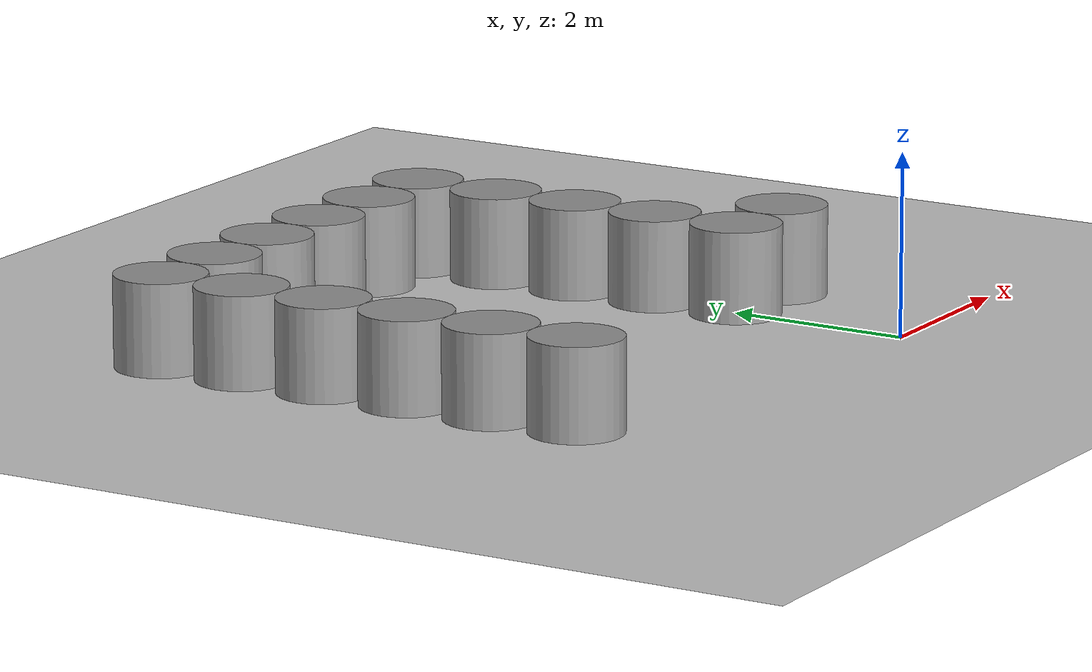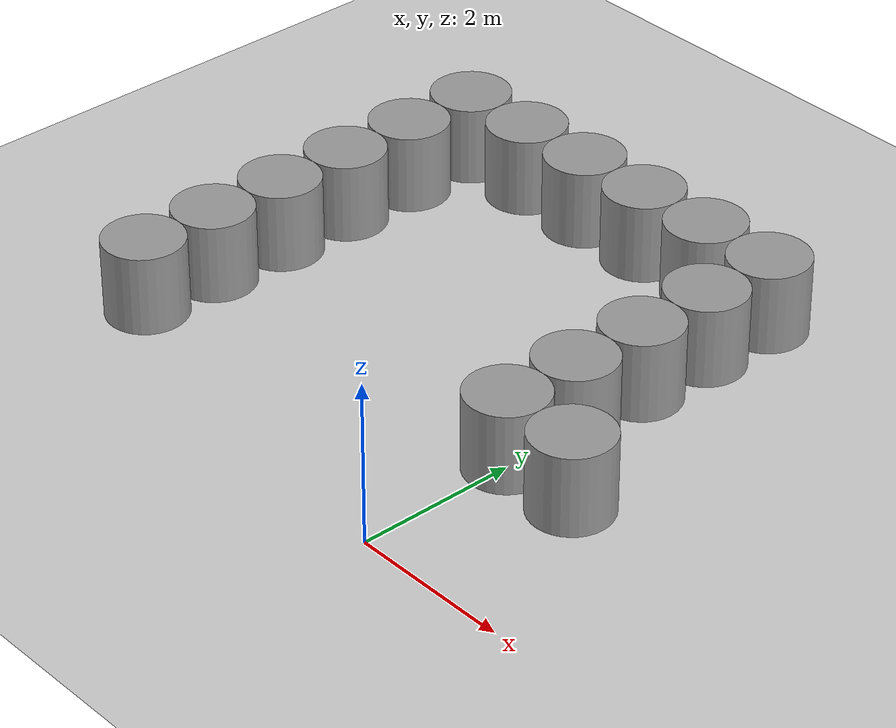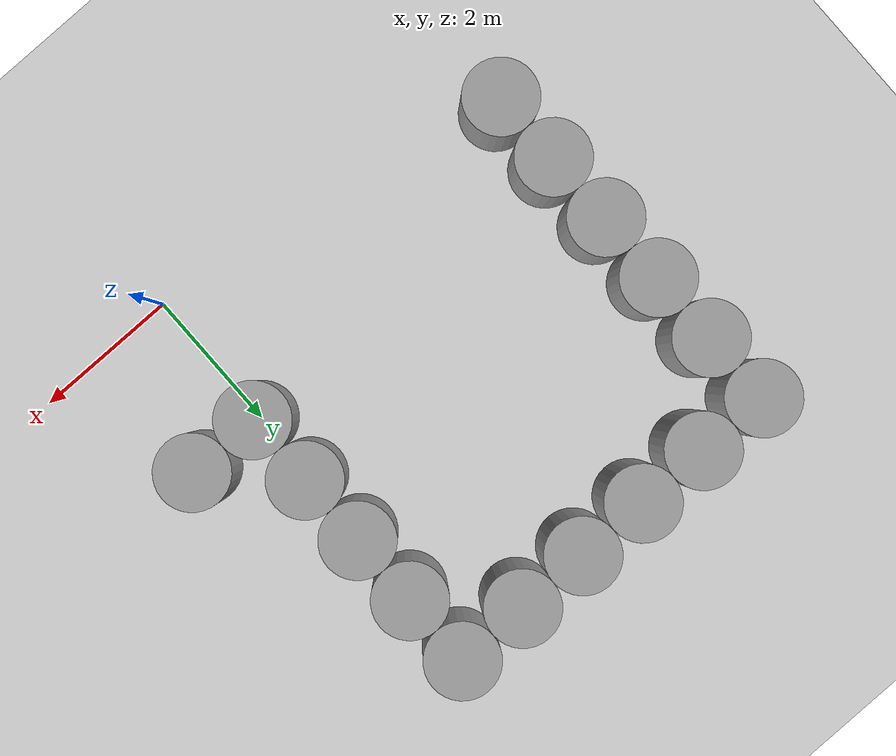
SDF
<sdf version="1.7">
 <world name="default">
  <model name="ground_plane">
   <static>1</static>
   <link name="link">
    <collision name="collision">
     <geometry><plane><normal>0 0 1</normal><size>100 100</size></plane></geometry>
     <surface>
      <contact><collide_bitmask>65535</collide_bitmask></contact>
      <friction><ode><mu>100</mu><mu2>50</mu2></ode></friction>
     </surface>
    </collision>
    <visual name="visual">
     <cast_shadows>0</cast_shadows>
     <geometry><plane><normal>0 0 1</normal><size>100 100</size></plane></geometry>
     <material>
      <script><uri>file://media/materials/scripts/gazebo.material</uri><name>Gazebo/Grey</name></script>
     </material>
    </visual>
   </link>
  </model>
  <model name="cylinder_1m">
   <model name="cylinder_1m">
    <link name="link_0">
     <inertial>
      <mass>1</mass>
      <inertia>
       <ixx>0.166667</ixx>
       <ixy>0</ixy>
       <ixz>0</ixz>
       <iyy>0.166667</iyy>
       <iyz>0</iyz>
       <izz>0.166667</izz>
      </inertia>
     </inertial>
     <pose>0 0 -0 1.5708 -0 0</pose>
     <visual name="visual">
      <geometry>
       <mesh>
        <uri>/home/leesirius/workbench_ws/src/tb3_custom_worlds/custom_models/cylinder_1m.obj</uri>
        <scale>1 1 1</scale>
       </mesh>
      </geometry>
      <material>
       <lighting>1</lighting>
       <script><uri>file://media/materials/scripts/gazebo.material</uri><name>Gazebo/Grey</name></script>
       <shader type="pixel"/>
      </material>
     </visual>
     <collision name="collision">
      <geometry>
       <mesh>
        <uri>/home/leesirius/workbench_ws/src/tb3_custom_worlds/custom_models/cylinder_1m.obj</uri>
        <scale>1 1 1</scale>
       </mesh>
      </geometry>
      <surface>
       <friction>
        <ode><mu>1</mu><mu2>1</mu2><fdir1>0 0 0</fdir1><slip1>0</slip1><slip2>0</slip2></ode>
        <torsional>
         <coefficient>1</coefficient>
         <patch_radius>0</patch_radius>
         <surface_radius>0</surface_radius>
         <use_patch_radius>1</use_patch_radius>
         <ode><slip>0</slip></ode>
        </torsional>
       </friction>
       <bounce><restitution_coefficient>0</restitution_coefficient><threshold>1e+06</threshold></bounce>
       <contact>
        <collide_without_contact>0</collide_without_contact>
        <collide_without_contact_bitmask>1</collide_without_contact_bitmask>
        <collide_bitmask>1</collide_bitmask>
        <ode>
         <soft_cfm>0</soft_cfm>
         <soft_erp>0.2</soft_erp>
         <kp>1e+13</kp>
         <kd>1</kd>
         <max_vel>0.01</max_vel>
         <min_depth>0</min_depth>
        </ode>
        <bullet>
         <split_impulse>1</split_impulse>
         <split_impulse_penetration_threshold>-0.01</split_impulse_penetration_threshold>
         <soft_cfm>0</soft_cfm>
         <soft_erp>0.2</soft_erp>
         <kp>1e+13</kp>
         <kd>1</kd>
        </bullet>
       </contact>
      </surface>
     </collision>
    </link>
    <static>0</static>
    <pose>0 0 4e-06 0 -0 0</pose>
   </model>
   <static>1</static>
   <pose>1.1e-05 2.99999 0.499996 -4e-06 0 3.1e-05</pose>
  </model>
  <model name="cylinder_1m_0">
   <model name="cylinder_1m">
    <link name="link_0">
     <inertial>
      <mass>1</mass>
      <inertia>
       <ixx>0.166667</ixx>
       <ixy>0</ixy>
       <ixz>0</ixz>
       <iyy>0.166667</iyy>
       <iyz>0</iyz>
       <izz>0.166667</izz>
      </inertia>
     </inertial>
     <pose>0 0 -0 1.5708 -0 0</pose>
     <visual name="visual">
      <geometry>
       <mesh>
        <uri>/home/leesirius/workbench_ws/src/tb3_custom_worlds/custom_models/cylinder_1m.obj</uri>
        <scale>1 1 1</scale>
       </mesh>
      </geometry>
      <material>
       <lighting>1</lighting>
       <script><uri>file://media/materials/scripts/gazebo.material</uri><name>Gazebo/Grey</name></script>
       <shader type="pixel"/>
      </material>
     </visual>
     <collision name="collision">
      <geometry>
       <mesh>
        <uri>/home/leesirius/workbench_ws/src/tb3_custom_worlds/custom_models/cylinder_1m.obj</uri>
        <scale>1 1 1</scale>
       </mesh>
      </geometry>
      <surface>
       <friction>
        <ode><mu>1</mu><mu2>1</mu2><fdir1>0 0 0</fdir1><slip1>0</slip1><slip2>0</slip2></ode>
        <torsional>
         <coefficient>1</coefficient>
         <patch_radius>0</patch_radius>
         <surface_radius>0</surface_radius>
         <use_patch_radius>1</use_patch_radius>
         <ode><slip>0</slip></ode>
        </torsional>
       </friction>
       <bounce><restitution_coefficient>0</restitution_coefficient><threshold>1e+06</threshold></bounce>
       <contact>
        <collide_without_contact>0</collide_without_contact>
        <collide_without_contact_bitmask>1</collide_without_contact_bitmask>
        <collide_bitmask>1</collide_bitmask>
        <ode>
         <soft_cfm>0</soft_cfm>
         <soft_erp>0.2</soft_erp>
         <kp>1e+13</kp>
         <kd>1</kd>
         <max_vel>0.01</max_vel>
         <min_depth>0</min_depth>
        </ode>
        <bullet>
         <split_impulse>1</split_impulse>
         <split_impulse_penetration_threshold>-0.01</split_impulse_penetration_threshold>
         <soft_cfm>0</soft_cfm>
         <soft_erp>0.2</soft_erp>
         <kp>1e+13</kp>
         <kd>1</kd>
        </bullet>
       </contact>
      </surface>
     </collision>
    </link>
    <static>0</static>
    <pose>0 0 4e-06 0 -0 0</pose>
   </model>
   <static>1</static>
   <pose>1.1e-05 1.99999 0.499996 -4e-06 0 3.1e-05</pose>
  </model>
  <model name="cylinder_1m_1_clone_1">
   <model name="cylinder_1m">
    <link name="link_0">
     <inertial>
      <mass>1</mass>
      <inertia>
       <ixx>0.166667</ixx>
       <ixy>0</ixy>
       <ixz>0</ixz>
       <iyy>0.166667</iyy>
       <iyz>0</iyz>
       <izz>0.166667</izz>
      </inertia>
     </inertial>
     <pose>0 0 -0 1.5708 -0 0</pose>
     <visual name="visual">
      <geometry>
       <mesh>
        <uri>/home/leesirius/workbench_ws/src/tb3_custom_worlds/custom_models/cylinder_1m.obj</uri>
        <scale>1 1 1</scale>
       </mesh>
      </geometry>
      <material>
       <lighting>1</lighting>
       <script><uri>file://media/materials/scripts/gazebo.material</uri><name>Gazebo/Grey</name></script>
       <shader type="pixel"/>
      </material>
     </visual>
     <collision name="collision">
      <geometry>
       <mesh>
        <uri>/home/leesirius/workbench_ws/src/tb3_custom_worlds/custom_models/cylinder_1m.obj</uri>
        <scale>1 1 1</scale>
       </mesh>
      </geometry>
      <surface>
       <friction>
        <ode><mu>1</mu><mu2>1</mu2><fdir1>0 0 0</fdir1><slip1>0</slip1><slip2>0</slip2></ode>
        <torsional>
         <coefficient>1</coefficient>
         <patch_radius>0</patch_radius>
         <surface_radius>0</surface_radius>
         <use_patch_radius>1</use_patch_radius>
         <ode><slip>0</slip></ode>
        </torsional>
       </friction>
       <bounce><restitution_coefficient>0</restitution_coefficient><threshold>1e+06</threshold></bounce>
       <contact>
        <collide_without_contact>0</collide_without_contact>
        <collide_without_contact_bitmask>1</collide_without_contact_bitmask>
        <collide_bitmask>1</collide_bitmask>
        <ode>
         <soft_cfm>0</soft_cfm>
         <soft_erp>0.2</soft_erp>
         <kp>1e+13</kp>
         <kd>1</kd>
         <max_vel>0.01</max_vel>
         <min_depth>0</min_depth>
        </ode>
        <bullet>
         <split_impulse>1</split_impulse>
         <split_impulse_penetration_threshold>-0.01</split_impulse_penetration_threshold>
         <soft_cfm>0</soft_cfm>
         <soft_erp>0.2</soft_erp>
         <kp>1e+13</kp>
         <kd>1</kd>
        </bullet>
       </contact>
      </surface>
     </collision>
    </link>
    <static>0</static>
    <pose>0 0 4e-06 0 -0 0</pose>
   </model>
   <static>1</static>
   <pose>1.1e-05 3.99999 0.499996 -4e-06 0 3.1e-05</pose>
  </model>
  <model name="cylinder_1m_1_clone_3">
   <model name="cylinder_1m">
    <link name="link_0">
     <inertial>
      <mass>1</mass>
      <inertia>
       <ixx>0.166667</ixx>
       <ixy>0</ixy>
       <ixz>0</ixz>
       <iyy>0.166667</iyy>
       <iyz>0</iyz>
       <izz>0.166667</izz>
      </inertia>
     </inertial>
     <pose>0 0 -0 1.5708 -0 0</pose>
     <visual name="visual">
      <geometry>
       <mesh>
        <uri>/home/leesirius/workbench_ws/src/tb3_custom_worlds/custom_models/cylinder_1m.obj</uri>
        <scale>1 1 1</scale>
       </mesh>
      </geometry>
      <material>
       <lighting>1</lighting>
       <script><uri>file://media/materials/scripts/gazebo.material</uri><name>Gazebo/Grey</name></script>
       <shader type="pixel"/>
      </material>
     </visual>
     <collision name="collision">
      <geometry>
       <mesh>
        <uri>/home/leesirius/workbench_ws/src/tb3_custom_worlds/custom_models/cylinder_1m.obj</uri>
        <scale>1 1 1</scale>
       </mesh>
      </geometry>
      <surface>
       <friction>
        <ode><mu>1</mu><mu2>1</mu2><fdir1>0 0 0</fdir1><slip1>0</slip1><slip2>0</slip2></ode>
        <torsional>
         <coefficient>1</coefficient>
         <patch_radius>0</patch_radius>
         <surface_radius>0</surface_radius>
         <use_patch_radius>1</use_patch_radius>
         <ode><slip>0</slip></ode>
        </torsional>
       </friction>
       <bounce><restitution_coefficient>0</restitution_coefficient><threshold>1e+06</threshold></bounce>
       <contact>
        <collide_without_contact>0</collide_without_contact>
        <collide_without_contact_bitmask>1</collide_without_contact_bitmask>
        <collide_bitmask>1</collide_bitmask>
        <ode>
         <soft_cfm>0</soft_cfm>
         <soft_erp>0.2</soft_erp>
         <kp>1e+13</kp>
         <kd>1</kd>
         <max_vel>0.01</max_vel>
         <min_depth>0</min_depth>
        </ode>
        <bullet>
         <split_impulse>1</split_impulse>
         <split_impulse_penetration_threshold>-0.01</split_impulse_penetration_threshold>
         <soft_cfm>0</soft_cfm>
         <soft_erp>0.2</soft_erp>
         <kp>1e+13</kp>
         <kd>1</kd>
        </bullet>
       </contact>
      </surface>
     </collision>
    </link>
    <static>0</static>
    <pose>0 0 4e-06 0 -0 0</pose>
   </model>
   <static>1</static>
   <pose>1.1e-05 4.99999 0.499996 -4e-06 0 3.1e-05</pose>
  </model>
  <model name="cylinder_1m_1_clone_4">
   <model name="cylinder_1m">
    <link name="link_0">
     <inertial>
      <mass>1</mass>
      <inertia>
       <ixx>0.166667</ixx>
       <ixy>0</ixy>
       <ixz>0</ixz>
       <iyy>0.166667</iyy>
       <iyz>0</iyz>
       <izz>0.166667</izz>
      </inertia>
     </inertial>
     <pose>0 0 -0 1.5708 -0 0</pose>
     <visual name="visual">
      <geometry>
       <mesh>
        <uri>/home/leesirius/workbench_ws/src/tb3_custom_worlds/custom_models/cylinder_1m.obj</uri>
        <scale>1 1 1</scale>
       </mesh>
      </geometry>
      <material>
       <lighting>1</lighting>
       <script><uri>file://media/materials/scripts/gazebo.material</uri><name>Gazebo/Grey</name></script>
       <shader type="pixel"/>
      </material>
     </visual>
     <collision name="collision">
      <geometry>
       <mesh>
        <uri>/home/leesirius/workbench_ws/src/tb3_custom_worlds/custom_models/cylinder_1m.obj</uri>
        <scale>1 1 1</scale>
       </mesh>
      </geometry>
      <surface>
       <friction>
        <ode><mu>1</mu><mu2>1</mu2><fdir1>0 0 0</fdir1><slip1>0</slip1><slip2>0</slip2></ode>
        <torsional>
         <coefficient>1</coefficient>
         <patch_radius>0</patch_radius>
         <surface_radius>0</surface_radius>
         <use_patch_radius>1</use_patch_radius>
         <ode><slip>0</slip></ode>
        </torsional>
       </friction>
       <bounce><restitution_coefficient>0</restitution_coefficient><threshold>1e+06</threshold></bounce>
       <contact>
        <collide_without_contact>0</collide_without_contact>
        <collide_without_contact_bitmask>1</collide_without_contact_bitmask>
        <collide_bitmask>1</collide_bitmask>
        <ode>
         <soft_cfm>0</soft_cfm>
         <soft_erp>0.2</soft_erp>
         <kp>1e+13</kp>
         <kd>1</kd>
         <max_vel>0.01</max_vel>
         <min_depth>0</min_depth>
        </ode>
        <bullet>
         <split_impulse>1</split_impulse>
         <split_impulse_penetration_threshold>-0.01</split_impulse_penetration_threshold>
         <soft_cfm>0</soft_cfm>
         <soft_erp>0.2</soft_erp>
         <kp>1e+13</kp>
         <kd>1</kd>
        </bullet>
       </contact>
      </surface>
     </collision>
    </link>
    <static>0</static>
    <pose>0 0 4e-06 0 -0 0</pose>
   </model>
   <static>1</static>
   <pose>1.1e-05 5.99999 0.499996 -4e-06 0 3.1e-05</pose>
  </model>
  <model name="cylinder_1m_1_clone_17">
   <model name="cylinder_1m">
    <link name="link_0">
     <inertial>
      <mass>1</mass>
      <inertia>
       <ixx>0.166667</ixx>
       <ixy>0</ixy>
       <ixz>0</ixz>
       <iyy>0.166667</iyy>
       <iyz>0</iyz>
       <izz>0.166667</izz>
      </inertia>
     </inertial>
     <pose>0 0 -0 1.5708 -0 0</pose>
     <visual name="visual">
      <geometry>
       <mesh>
        <uri>/home/leesirius/workbench_ws/src/tb3_custom_worlds/custom_models/cylinder_1m.obj</uri>
        <scale>1 1 1</scale>
       </mesh>
      </geometry>
      <material>
       <lighting>1</lighting>
       <script><uri>file://media/materials/scripts/gazebo.material</uri><name>Gazebo/Grey</name></script>
       <shader type="pixel"/>
      </material>
     </visual>
     <collision name="collision">
      <geometry>
       <mesh>
        <uri>/home/leesirius/workbench_ws/src/tb3_custom_worlds/custom_models/cylinder_1m.obj</uri>
        <scale>1 1 1</scale>
       </mesh>
      </geometry>
      <surface>
       <friction>
        <ode><mu>1</mu><mu2>1</mu2><fdir1>0 0 0</fdir1><slip1>0</slip1><slip2>0</slip2></ode>
        <torsional>
         <coefficient>1</coefficient>
         <patch_radius>0</patch_radius>
         <surface_radius>0</surface_radius>
         <use_patch_radius>1</use_patch_radius>
         <ode><slip>0</slip></ode>
        </torsional>
       </friction>
       <bounce><restitution_coefficient>0</restitution_coefficient><threshold>1e+06</threshold></bounce>
       <contact>
        <collide_without_contact>0</collide_without_contact>
        <collide_without_contact_bitmask>1</collide_without_contact_bitmask>
        <collide_bitmask>1</collide_bitmask>
        <ode>
         <soft_cfm>0</soft_cfm>
         <soft_erp>0.2</soft_erp>
         <kp>1e+13</kp>
         <kd>1</kd>
         <max_vel>0.01</max_vel>
         <min_depth>0</min_depth>
        </ode>
        <bullet>
         <split_impulse>1</split_impulse>
         <split_impulse_penetration_threshold>-0.01</split_impulse_penetration_threshold>
         <soft_cfm>0</soft_cfm>
         <soft_erp>0.2</soft_erp>
         <kp>1e+13</kp>
         <kd>1</kd>
        </bullet>
       </contact>
      </surface>
     </collision>
    </link>
    <static>0</static>
    <pose>0 0 4e-06 0 -0 0</pose>
   </model>
   <static>1</static>
   <pose>-4.99999 0.999994 0.499996 -4e-06 0 3.1e-05</pose>
  </model>
  <model name="cylinder_1m_1_clone_18">
   <model name="cylinder_1m">
    <link name="link_0">
     <inertial>
      <mass>1</mass>
      <inertia>
       <ixx>0.166667</ixx>
       <ixy>0</ixy>
       <ixz>0</ixz>
       <iyy>0.166667</iyy>
       <iyz>0</iyz>
       <izz>0.166667</izz>
      </inertia>
     </inertial>
     <pose>0 0 -0 1.5708 -0 0</pose>
     <visual name="visual">
      <geometry>
       <mesh>
        <uri>/home/leesirius/workbench_ws/src/tb3_custom_worlds/custom_models/cylinder_1m.obj</uri>
        <scale>1 1 1</scale>
       </mesh>
      </geometry>
      <material>
       <lighting>1</lighting>
       <script><uri>file://media/materials/scripts/gazebo.material</uri><name>Gazebo/Grey</name></script>
       <shader type="pixel"/>
      </material>
     </visual>
     <collision name="collision">
      <geometry>
       <mesh>
        <uri>/home/leesirius/workbench_ws/src/tb3_custom_worlds/custom_models/cylinder_1m.obj</uri>
        <scale>1 1 1</scale>
       </mesh>
      </geometry>
      <surface>
       <friction>
        <ode><mu>1</mu><mu2>1</mu2><fdir1>0 0 0</fdir1><slip1>0</slip1><slip2>0</slip2></ode>
        <torsional>
         <coefficient>1</coefficient>
         <patch_radius>0</patch_radius>
         <surface_radius>0</surface_radius>
         <use_patch_radius>1</use_patch_radius>
         <ode><slip>0</slip></ode>
        </torsional>
       </friction>
       <bounce><restitution_coefficient>0</restitution_coefficient><threshold>1e+06</threshold></bounce>
       <contact>
        <collide_without_contact>0</collide_without_contact>
        <collide_without_contact_bitmask>1</collide_without_contact_bitmask>
        <collide_bitmask>1</collide_bitmask>
        <ode>
         <soft_cfm>0</soft_cfm>
         <soft_erp>0.2</soft_erp>
         <kp>1e+13</kp>
         <kd>1</kd>
         <max_vel>0.01</max_vel>
         <min_depth>0</min_depth>
        </ode>
        <bullet>
         <split_impulse>1</split_impulse>
         <split_impulse_penetration_threshold>-0.01</split_impulse_penetration_threshold>
         <soft_cfm>0</soft_cfm>
         <soft_erp>0.2</soft_erp>
         <kp>1e+13</kp>
         <kd>1</kd>
        </bullet>
       </contact>
      </surface>
     </collision>
    </link>
    <static>0</static>
    <pose>0 0 4e-06 0 -0 0</pose>
   </model>
   <static>1</static>
   <pose>-4.99999 1.99999 0.499996 -4e-06 0 3.1e-05</pose>
  </model>
  <model name="cylinder_1m_1_clone_19">
   <model name="cylinder_1m">
    <link name="link_0">
     <inertial>
      <mass>1</mass>
      <inertia>
       <ixx>0.166667</ixx>
       <ixy>0</ixy>
       <ixz>0</ixz>
       <iyy>0.166667</iyy>
       <iyz>0</iyz>
       <izz>0.166667</izz>
      </inertia>
     </inertial>
     <pose>0 0 -0 1.5708 -0 0</pose>
     <visual name="visual">
      <geometry>
       <mesh>
        <uri>/home/leesirius/workbench_ws/src/tb3_custom_worlds/custom_models/cylinder_1m.obj</uri>
        <scale>1 1 1</scale>
       </mesh>
      </geometry>
      <material>
       <lighting>1</lighting>
       <script><uri>file://media/materials/scripts/gazebo.material</uri><name>Gazebo/Grey</name></script>
       <shader type="pixel"/>
      </material>
     </visual>
     <collision name="collision">
      <geometry>
       <mesh>
        <uri>/home/leesirius/workbench_ws/src/tb3_custom_worlds/custom_models/cylinder_1m.obj</uri>
        <scale>1 1 1</scale>
       </mesh>
      </geometry>
      <surface>
       <friction>
        <ode><mu>1</mu><mu2>1</mu2><fdir1>0 0 0</fdir1><slip1>0</slip1><slip2>0</slip2></ode>
        <torsional>
         <coefficient>1</coefficient>
         <patch_radius>0</patch_radius>
         <surface_radius>0</surface_radius>
         <use_patch_radius>1</use_patch_radius>
         <ode><slip>0</slip></ode>
        </torsional>
       </friction>
       <bounce><restitution_coefficient>0</restitution_coefficient><threshold>1e+06</threshold></bounce>
       <contact>
        <collide_without_contact>0</collide_without_contact>
        <collide_without_contact_bitmask>1</collide_without_contact_bitmask>
        <collide_bitmask>1</collide_bitmask>
        <ode>
         <soft_cfm>0</soft_cfm>
         <soft_erp>0.2</soft_erp>
         <kp>1e+13</kp>
         <kd>1</kd>
         <max_vel>0.01</max_vel>
         <min_depth>0</min_depth>
        </ode>
        <bullet>
         <split_impulse>1</split_impulse>
         <split_impulse_penetration_threshold>-0.01</split_impulse_penetration_threshold>
         <soft_cfm>0</soft_cfm>
         <soft_erp>0.2</soft_erp>
         <kp>1e+13</kp>
         <kd>1</kd>
        </bullet>
       </contact>
      </surface>
     </collision>
    </link>
    <static>0</static>
    <pose>0 0 4e-06 0 -0 0</pose>
   </model>
   <static>1</static>
   <pose>-4.99999 2.99999 0.499996 -4e-06 0 3.1e-05</pose>
  </model>
  <model name="cylinder_1m_1_clone_20">
   <model name="cylinder_1m">
    <link name="link_0">
     <inertial>
      <mass>1</mass>
      <inertia>
       <ixx>0.166667</ixx>
       <ixy>0</ixy>
       <ixz>0</ixz>
       <iyy>0.166667</iyy>
       <iyz>0</iyz>
       <izz>0.166667</izz>
      </inertia>
     </inertial>
     <pose>0 0 -0 1.5708 -0 0</pose>
     <visual name="visual">
      <geometry>
       <mesh>
        <uri>/home/leesirius/workbench_ws/src/tb3_custom_worlds/custom_models/cylinder_1m.obj</uri>
        <scale>1 1 1</scale>
       </mesh>
      </geometry>
      <material>
       <lighting>1</lighting>
       <script><uri>file://media/materials/scripts/gazebo.material</uri><name>Gazebo/Grey</name></script>
       <shader type="pixel"/>
      </material>
     </visual>
     <collision name="collision">
      <geometry>
       <mesh>
        <uri>/home/leesirius/workbench_ws/src/tb3_custom_worlds/custom_models/cylinder_1m.obj</uri>
        <scale>1 1 1</scale>
       </mesh>
      </geometry>
      <surface>
       <friction>
        <ode><mu>1</mu><mu2>1</mu2><fdir1>0 0 0</fdir1><slip1>0</slip1><slip2>0</slip2></ode>
        <torsional>
         <coefficient>1</coefficient>
         <patch_radius>0</patch_radius>
         <surface_radius>0</surface_radius>
         <use_patch_radius>1</use_patch_radius>
         <ode><slip>0</slip></ode>
        </torsional>
       </friction>
       <bounce><restitution_coefficient>0</restitution_coefficient><threshold>1e+06</threshold></bounce>
       <contact>
        <collide_without_contact>0</collide_without_contact>
        <collide_without_contact_bitmask>1</collide_without_contact_bitmask>
        <collide_bitmask>1</collide_bitmask>
        <ode>
         <soft_cfm>0</soft_cfm>
         <soft_erp>0.2</soft_erp>
         <kp>1e+13</kp>
         <kd>1</kd>
         <max_vel>0.01</max_vel>
         <min_depth>0</min_depth>
        </ode>
        <bullet>
         <split_impulse>1</split_impulse>
         <split_impulse_penetration_threshold>-0.01</split_impulse_penetration_threshold>
         <soft_cfm>0</soft_cfm>
         <soft_erp>0.2</soft_erp>
         <kp>1e+13</kp>
         <kd>1</kd>
        </bullet>
       </contact>
      </surface>
     </collision>
    </link>
    <static>0</static>
    <pose>0 0 4e-06 0 -0 0</pose>
   </model>
   <static>1</static>
   <pose>-4.99999 3.99999 0.499996 -4e-06 0 3.1e-05</pose>
  </model>
  <model name="cylinder_1m_1_clone_21">
   <model name="cylinder_1m">
    <link name="link_0">
     <inertial>
      <mass>1</mass>
      <inertia>
       <ixx>0.166667</ixx>
       <ixy>0</ixy>
       <ixz>0</ixz>
       <iyy>0.166667</iyy>
       <iyz>0</iyz>
       <izz>0.166667</izz>
      </inertia>
     </inertial>
     <pose>0 0 -0 1.5708 -0 0</pose>
     <visual name="visual">
      <geometry>
       <mesh>
        <uri>/home/leesirius/workbench_ws/src/tb3_custom_worlds/custom_models/cylinder_1m.obj</uri>
        <scale>1 1 1</scale>
       </mesh>
      </geometry>
      <material>
       <lighting>1</lighting>
       <script><uri>file://media/materials/scripts/gazebo.material</uri><name>Gazebo/Grey</name></script>
       <shader type="pixel"/>
      </material>
     </visual>
     <collision name="collision">
      <geometry>
       <mesh>
        <uri>/home/leesirius/workbench_ws/src/tb3_custom_worlds/custom_models/cylinder_1m.obj</uri>
        <scale>1 1 1</scale>
       </mesh>
      </geometry>
      <surface>
       <friction>
        <ode><mu>1</mu><mu2>1</mu2><fdir1>0 0 0</fdir1><slip1>0</slip1><slip2>0</slip2></ode>
        <torsional>
         <coefficient>1</coefficient>
         <patch_radius>0</patch_radius>
         <surface_radius>0</surface_radius>
         <use_patch_radius>1</use_patch_radius>
         <ode><slip>0</slip></ode>
        </torsional>
       </friction>
       <bounce><restitution_coefficient>0</restitution_coefficient><threshold>1e+06</threshold></bounce>
       <contact>
        <collide_without_contact>0</collide_without_contact>
        <collide_without_contact_bitmask>1</collide_without_contact_bitmask>
        <collide_bitmask>1</collide_bitmask>
        <ode>
         <soft_cfm>0</soft_cfm>
         <soft_erp>0.2</soft_erp>
         <kp>1e+13</kp>
         <kd>1</kd>
         <max_vel>0.01</max_vel>
         <min_depth>0</min_depth>
        </ode>
        <bullet>
         <split_impulse>1</split_impulse>
         <split_impulse_penetration_threshold>-0.01</split_impulse_penetration_threshold>
         <soft_cfm>0</soft_cfm>
         <soft_erp>0.2</soft_erp>
         <kp>1e+13</kp>
         <kd>1</kd>
        </bullet>
       </contact>
      </surface>
     </collision>
    </link>
    <static>0</static>
    <pose>0 0 4e-06 0 -0 0</pose>
   </model>
   <static>1</static>
   <pose>-4.99999 4.99999 0.499996 -4e-06 0 3.1e-05</pose>
  </model>
  <model name="cylinder_1m_1_clone_22">
   <model name="cylinder_1m">
    <link name="link_0">
     <inertial>
      <mass>1</mass>
      <inertia>
       <ixx>0.166667</ixx>
       <ixy>0</ixy>
       <ixz>0</ixz>
       <iyy>0.166667</iyy>
       <iyz>0</iyz>
       <izz>0.166667</izz>
      </inertia>
     </inertial>
     <pose>0 0 -0 1.5708 -0 0</pose>
     <visual name="visual">
      <geometry>
       <mesh>
        <uri>/home/leesirius/workbench_ws/src/tb3_custom_worlds/custom_models/cylinder_1m.obj</uri>
        <scale>1 1 1</scale>
       </mesh>
      </geometry>
      <material>
       <lighting>1</lighting>
       <script><uri>file://media/materials/scripts/gazebo.material</uri><name>Gazebo/Grey</name></script>
       <shader type="pixel"/>
      </material>
     </visual>
     <collision name="collision">
      <geometry>
       <mesh>
        <uri>/home/leesirius/workbench_ws/src/tb3_custom_worlds/custom_models/cylinder_1m.obj</uri>
        <scale>1 1 1</scale>
       </mesh>
      </geometry>
      <surface>
       <friction>
        <ode><mu>1</mu><mu2>1</mu2><fdir1>0 0 0</fdir1><slip1>0</slip1><slip2>0</slip2></ode>
        <torsional>
         <coefficient>1</coefficient>
         <patch_radius>0</patch_radius>
         <surface_radius>0</surface_radius>
         <use_patch_radius>1</use_patch_radius>
         <ode><slip>0</slip></ode>
        </torsional>
       </friction>
       <bounce><restitution_coefficient>0</restitution_coefficient><threshold>1e+06</threshold></bounce>
       <contact>
        <collide_without_contact>0</collide_without_contact>
        <collide_without_contact_bitmask>1</collide_without_contact_bitmask>
        <collide_bitmask>1</collide_bitmask>
        <ode>
         <soft_cfm>0</soft_cfm>
         <soft_erp>0.2</soft_erp>
         <kp>1e+13</kp>
         <kd>1</kd>
         <max_vel>0.01</max_vel>
         <min_depth>0</min_depth>
        </ode>
        <bullet>
         <split_impulse>1</split_impulse>
         <split_impulse_penetration_threshold>-0.01</split_impulse_penetration_threshold>
         <soft_cfm>0</soft_cfm>
         <soft_erp>0.2</soft_erp>
         <kp>1e+13</kp>
         <kd>1</kd>
        </bullet>
       </contact>
      </surface>
     </collision>
    </link>
    <static>0</static>
    <pose>0 0 4e-06 0 -0 0</pose>
   </model>
   <static>1</static>
   <pose>-4.99999 5.99999 0.499996 -4e-06 0 3.1e-05</pose>
  </model>
  <model name="cylinder_1m_1_clone_23">
   <model name="cylinder_1m">
    <link name="link_0">
     <inertial>
      <mass>1</mass>
      <inertia>
       <ixx>0.166667</ixx>
       <ixy>0</ixy>
       <ixz>0</ixz>
       <iyy>0.166667</iyy>
       <iyz>0</iyz>
       <izz>0.166667</izz>
      </inertia>
     </inertial>
     <pose>0 0 -0 1.5708 -0 0</pose>
     <visual name="visual">
      <geometry>
       <mesh>
        <uri>/home/leesirius/workbench_ws/src/tb3_custom_worlds/custom_models/cylinder_1m.obj</uri>
        <scale>1 1 1</scale>
       </mesh>
      </geometry>
      <material>
       <lighting>1</lighting>
       <script><uri>file://media/materials/scripts/gazebo.material</uri><name>Gazebo/Grey</name></script>
       <shader type="pixel"/>
      </material>
     </visual>
     <collision name="collision">
      <geometry>
       <mesh>
        <uri>/home/leesirius/workbench_ws/src/tb3_custom_worlds/custom_models/cylinder_1m.obj</uri>
        <scale>1 1 1</scale>
       </mesh>
      </geometry>
      <surface>
       <friction>
        <ode><mu>1</mu><mu2>1</mu2><fdir1>0 0 0</fdir1><slip1>0</slip1><slip2>0</slip2></ode>
        <torsional>
         <coefficient>1</coefficient>
         <patch_radius>0</patch_radius>
         <surface_radius>0</surface_radius>
         <use_patch_radius>1</use_patch_radius>
         <ode><slip>0</slip></ode>
        </torsional>
       </friction>
       <bounce><restitution_coefficient>0</restitution_coefficient><threshold>1e+06</threshold></bounce>
       <contact>
        <collide_without_contact>0</collide_without_contact>
        <collide_without_contact_bitmask>1</collide_without_contact_bitmask>
        <collide_bitmask>1</collide_bitmask>
        <ode>
         <soft_cfm>0</soft_cfm>
         <soft_erp>0.2</soft_erp>
         <kp>1e+13</kp>
         <kd>1</kd>
         <max_vel>0.01</max_vel>
         <min_depth>0</min_depth>
        </ode>
        <bullet>
         <split_impulse>1</split_impulse>
         <split_impulse_penetration_threshold>-0.01</split_impulse_penetration_threshold>
         <soft_cfm>0</soft_cfm>
         <soft_erp>0.2</soft_erp>
         <kp>1e+13</kp>
         <kd>1</kd>
        </bullet>
       </contact>
      </surface>
     </collision>
    </link>
    <static>0</static>
    <pose>0 0 4e-06 0 -0 0</pose>
   </model>
   <static>1</static>
   <pose>-3.99999 5.99999 0.499996 -4e-06 0 3.1e-05</pose>
  </model>
  <model name="cylinder_1m_1_clone_24">
   <model name="cylinder_1m">
    <link name="link_0">
     <inertial>
      <mass>1</mass>
      <inertia>
       <ixx>0.166667</ixx>
       <ixy>0</ixy>
       <ixz>0</ixz>
       <iyy>0.166667</iyy>
       <iyz>0</iyz>
       <izz>0.166667</izz>
      </inertia>
     </inertial>
     <pose>0 0 -0 1.5708 -0 0</pose>
     <visual name="visual">
      <geometry>
       <mesh>
        <uri>/home/leesirius/workbench_ws/src/tb3_custom_worlds/custom_models/cylinder_1m.obj</uri>
        <scale>1 1 1</scale>
       </mesh>
      </geometry>
      <material>
       <lighting>1</lighting>
       <script><uri>file://media/materials/scripts/gazebo.material</uri><name>Gazebo/Grey</name></script>
       <shader type="pixel"/>
      </material>
     </visual>
     <collision name="collision">
      <geometry>
       <mesh>
        <uri>/home/leesirius/workbench_ws/src/tb3_custom_worlds/custom_models/cylinder_1m.obj</uri>
        <scale>1 1 1</scale>
       </mesh>
      </geometry>
      <surface>
       <friction>
        <ode><mu>1</mu><mu2>1</mu2><fdir1>0 0 0</fdir1><slip1>0</slip1><slip2>0</slip2></ode>
        <torsional>
         <coefficient>1</coefficient>
         <patch_radius>0</patch_radius>
         <surface_radius>0</surface_radius>
         <use_patch_radius>1</use_patch_radius>
         <ode><slip>0</slip></ode>
        </torsional>
       </friction>
       <bounce><restitution_coefficient>0</restitution_coefficient><threshold>1e+06</threshold></bounce>
       <contact>
        <collide_without_contact>0</collide_without_contact>
        <collide_without_contact_bitmask>1</collide_without_contact_bitmask>
        <collide_bitmask>1</collide_bitmask>
        <ode>
         <soft_cfm>0</soft_cfm>
         <soft_erp>0.2</soft_erp>
         <kp>1e+13</kp>
         <kd>1</kd>
         <max_vel>0.01</max_vel>
         <min_depth>0</min_depth>
        </ode>
        <bullet>
         <split_impulse>1</split_impulse>
         <split_impulse_penetration_threshold>-0.01</split_impulse_penetration_threshold>
         <soft_cfm>0</soft_cfm>
         <soft_erp>0.2</soft_erp>
         <kp>1e+13</kp>
         <kd>1</kd>
        </bullet>
       </contact>
      </surface>
     </collision>
    </link>
    <static>0</static>
    <pose>0 0 4e-06 0 -0 0</pose>
   </model>
   <static>1</static>
   <pose>-2.99999 5.99999 0.499996 -4e-06 0 3.1e-05</pose>
  </model>
  <model name="cylinder_1m_1_clone_25">
   <model name="cylinder_1m">
    <link name="link_0">
     <inertial>
      <mass>1</mass>
      <inertia>
       <ixx>0.166667</ixx>
       <ixy>0</ixy>
       <ixz>0</ixz>
       <iyy>0.166667</iyy>
       <iyz>0</iyz>
       <izz>0.166667</izz>
      </inertia>
     </inertial>
     <pose>0 0 -0 1.5708 -0 0</pose>
     <visual name="visual">
      <geometry>
       <mesh>
        <uri>/home/leesirius/workbench_ws/src/tb3_custom_worlds/custom_models/cylinder_1m.obj</uri>
        <scale>1 1 1</scale>
       </mesh>
      </geometry>
      <material>
       <lighting>1</lighting>
       <script><uri>file://media/materials/scripts/gazebo.material</uri><name>Gazebo/Grey</name></script>
       <shader type="pixel"/>
      </material>
     </visual>
     <collision name="collision">
      <geometry>
       <mesh>
        <uri>/home/leesirius/workbench_ws/src/tb3_custom_worlds/custom_models/cylinder_1m.obj</uri>
        <scale>1 1 1</scale>
       </mesh>
      </geometry>
      <surface>
       <friction>
        <ode><mu>1</mu><mu2>1</mu2><fdir1>0 0 0</fdir1><slip1>0</slip1><slip2>0</slip2></ode>
        <torsional>
         <coefficient>1</coefficient>
         <patch_radius>0</patch_radius>
         <surface_radius>0</surface_radius>
         <use_patch_radius>1</use_patch_radius>
         <ode><slip>0</slip></ode>
        </torsional>
       </friction>
       <bounce><restitution_coefficient>0</restitution_coefficient><threshold>1e+06</threshold></bounce>
       <contact>
        <collide_without_contact>0</collide_without_contact>
        <collide_without_contact_bitmask>1</collide_without_contact_bitmask>
        <collide_bitmask>1</collide_bitmask>
        <ode>
         <soft_cfm>0</soft_cfm>
         <soft_erp>0.2</soft_erp>
         <kp>1e+13</kp>
         <kd>1</kd>
         <max_vel>0.01</max_vel>
         <min_depth>0</min_depth>
        </ode>
        <bullet>
         <split_impulse>1</split_impulse>
         <split_impulse_penetration_threshold>-0.01</split_impulse_penetration_threshold>
         <soft_cfm>0</soft_cfm>
         <soft_erp>0.2</soft_erp>
         <kp>1e+13</kp>
         <kd>1</kd>
        </bullet>
       </contact>
      </surface>
     </collision>
    </link>
    <static>0</static>
    <pose>0 0 4e-06 0 -0 0</pose>
   </model>
   <static>1</static>
   <pose>-1.99999 5.99999 0.499996 -4e-06 0 3.1e-05</pose>
  </model>
  <model name="cylinder_1m_1_clone_26">
   <model name="cylinder_1m">
    <link name="link_0">
     <inertial>
      <mass>1</mass>
      <inertia>
       <ixx>0.166667</ixx>
       <ixy>0</ixy>
       <ixz>0</ixz>
       <iyy>0.166667</iyy>
       <iyz>0</iyz>
       <izz>0.166667</izz>
      </inertia>
     </inertial>
     <pose>0 0 -0 1.5708 -0 0</pose>
     <visual name="visual">
      <geometry>
       <mesh>
        <uri>/home/leesirius/workbench_ws/src/tb3_custom_worlds/custom_models/cylinder_1m.obj</uri>
        <scale>1 1 1</scale>
       </mesh>
      </geometry>
      <material>
       <lighting>1</lighting>
       <script><uri>file://media/materials/scripts/gazebo.material</uri><name>Gazebo/Grey</name></script>
       <shader type="pixel"/>
      </material>
     </visual>
     <collision name="collision">
      <geometry>
       <mesh>
        <uri>/home/leesirius/workbench_ws/src/tb3_custom_worlds/custom_models/cylinder_1m.obj</uri>
        <scale>1 1 1</scale>
       </mesh>
      </geometry>
      <surface>
       <friction>
        <ode><mu>1</mu><mu2>1</mu2><fdir1>0 0 0</fdir1><slip1>0</slip1><slip2>0</slip2></ode>
        <torsional>
         <coefficient>1</coefficient>
         <patch_radius>0</patch_radius>
         <surface_radius>0</surface_radius>
         <use_patch_radius>1</use_patch_radius>
         <ode><slip>0</slip></ode>
        </torsional>
       </friction>
       <bounce><restitution_coefficient>0</restitution_coefficient><threshold>1e+06</threshold></bounce>
       <contact>
        <collide_without_contact>0</collide_without_contact>
        <collide_without_contact_bitmask>1</collide_without_contact_bitmask>
        <collide_bitmask>1</collide_bitmask>
        <ode>
         <soft_cfm>0</soft_cfm>
         <soft_erp>0.2</soft_erp>
         <kp>1e+13</kp>
         <kd>1</kd>
         <max_vel>0.01</max_vel>
         <min_depth>0</min_depth>
        </ode>
        <bullet>
         <split_impulse>1</split_impulse>
         <split_impulse_penetration_threshold>-0.01</split_impulse_penetration_threshold>
         <soft_cfm>0</soft_cfm>
         <soft_erp>0.2</soft_erp>
         <kp>1e+13</kp>
         <kd>1</kd>
        </bullet>
       </contact>
      </surface>
     </collision>
    </link>
    <static>0</static>
    <pose>0 0 4e-06 0 -0 0</pose>
   </model>
   <static>1</static>
   <pose>-0.999989 5.99999 0.499996 -4e-06 0 3.1e-05</pose>
  </model>
  <model name="cylinder_1m_1_clone_27">
   <model name="cylinder_1m">
    <link name="link_0">
     <inertial>
      <mass>1</mass>
      <inertia>
       <ixx>0.166667</ixx>
       <ixy>0</ixy>
       <ixz>0</ixz>
       <iyy>0.166667</iyy>
       <iyz>0</iyz>
       <izz>0.166667</izz>
      </inertia>
     </inertial>
     <pose>0 0 -0 1.5708 -0 0</pose>
     <visual name="visual">
      <geometry>
       <mesh>
        <uri>/home/leesirius/workbench_ws/src/tb3_custom_worlds/custom_models/cylinder_1m.obj</uri>
        <scale>1 1 1</scale>
       </mesh>
      </geometry>
      <material>
       <lighting>1</lighting>
       <script><uri>file://media/materials/scripts/gazebo.material</uri><name>Gazebo/Grey</name></script>
       <shader type="pixel"/>
      </material>
     </visual>
     <collision name="collision">
      <geometry>
       <mesh>
        <uri>/home/leesirius/workbench_ws/src/tb3_custom_worlds/custom_models/cylinder_1m.obj</uri>
        <scale>1 1 1</scale>
       </mesh>
      </geometry>
      <surface>
       <friction>
        <ode><mu>1</mu><mu2>1</mu2><fdir1>0 0 0</fdir1><slip1>0</slip1><slip2>0</slip2></ode>
        <torsional>
         <coefficient>1</coefficient>
         <patch_radius>0</patch_radius>
         <surface_radius>0</surface_radius>
         <use_patch_radius>1</use_patch_radius>
         <ode><slip>0</slip></ode>
        </torsional>
       </friction>
       <bounce><restitution_coefficient>0</restitution_coefficient><threshold>1e+06</threshold></bounce>
       <contact>
        <collide_without_contact>0</collide_without_contact>
        <collide_without_contact_bitmask>1</collide_without_contact_bitmask>
        <collide_bitmask>1</collide_bitmask>
        <ode>
         <soft_cfm>0</soft_cfm>
         <soft_erp>0.2</soft_erp>
         <kp>1e+13</kp>
         <kd>1</kd>
         <max_vel>0.01</max_vel>
         <min_depth>0</min_depth>
        </ode>
        <bullet>
         <split_impulse>1</split_impulse>
         <split_impulse_penetration_threshold>-0.01</split_impulse_penetration_threshold>
         <soft_cfm>0</soft_cfm>
         <soft_erp>0.2</soft_erp>
         <kp>1e+13</kp>
         <kd>1</kd>
        </bullet>
       </contact>
      </surface>
     </collision>
    </link>
    <static>0</static>
    <pose>0 0 4e-06 0 -0 0</pose>
   </model>
   <static>1</static>
   <pose>1.00001 1.99999 0.499995 -1e-06 1e-06 6.3e-05</pose>
  </model>
 </world>
</sdf>
